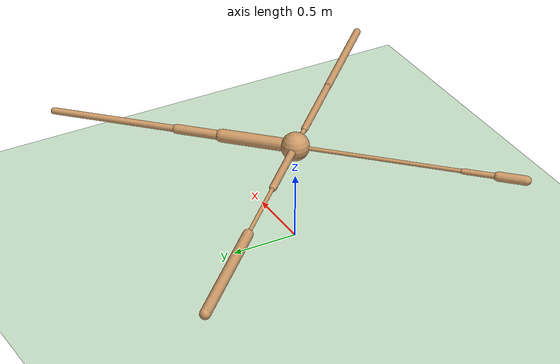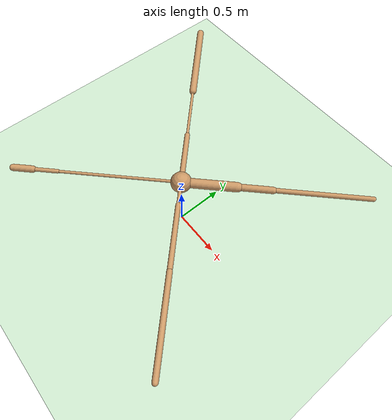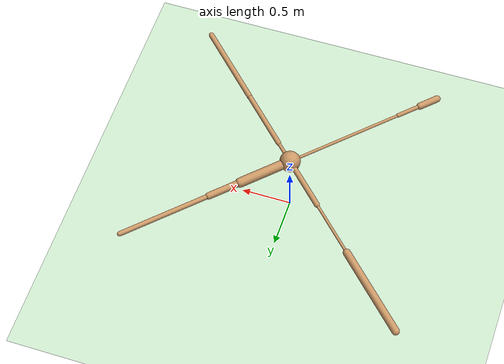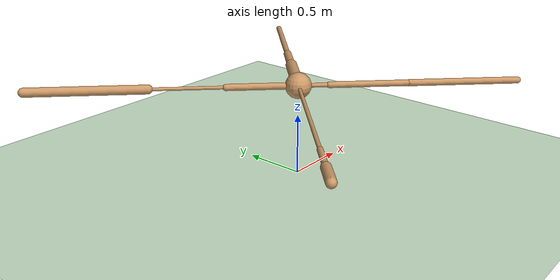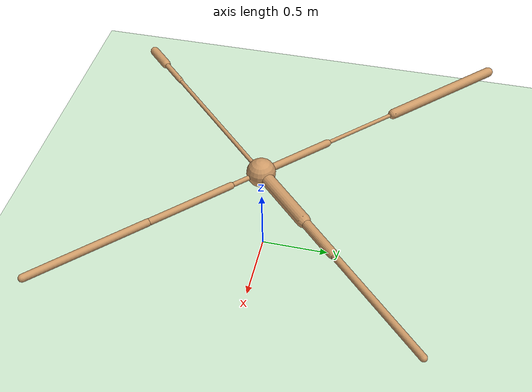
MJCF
<mujoco model="ant">
  <compiler angle="degree" coordinate="local" inertiafromgeom="true" />
  <option integrator="RK4" timestep="0.01" />
  <custom>
    <numeric data="0.0 0.0 0.55 1.0 0.0 0.0 0.0 0.0 1.0 0.0 -1.0 0.0 -1.0 0.0 1.0" name="init_qpos" />
  </custom>
  <default>
    <joint armature="1" damping="1" limited="true" />
    <geom conaffinity="0" condim="3" density="5.0" friction="1 0.5 0.5" margin="0.01" rgba="0.8 0.6 0.4 1" />
  </default>
  <asset>
    <texture builtin="gradient" height="100" rgb1="1 1 1" rgb2="0 0 0" type="skybox" width="100" />
    <texture builtin="flat" height="1278" mark="cross" markrgb="1 1 1" name="texgeom" random="0.01" rgb1="0.8 0.6 0.4" rgb2="0.8 0.6 0.4" type="cube" width="127" />
    <texture builtin="checker" height="100" name="texplane" rgb1="0 0 0" rgb2="0.8 0.8 0.8" type="2d" width="100" />
    <material name="MatPlane" reflectance="0.5" shininess="1" specular="1" texrepeat="60 60" texture="texplane" />
    <material name="geom" texture="texgeom" texuniform="true" />
  </asset>
  <worldbody>
    <light cutoff="100" diffuse="1 1 1" dir="-0 0 -1.3" directional="true" exponent="1" pos="0 0 1.3" specular=".1 .1 .1" />
    <geom conaffinity="1" condim="3" material="MatPlane" name="floor" pos="0 0 0" rgba="0.8 0.9 0.8 1" size="40 40 40" type="plane" />
    <body name="torso" pos="0 0 0.75">
      <camera name="track" mode="trackcom" pos="0 -11 5" xyaxes="1 0 0 0 0.5 1" />
      <geom name="torso_geom" pos="0 0 0" size="0.10446694493293762" type="sphere" />
      <joint armature="0" damping="0" limited="false" margin="0.01" name="root" pos="0 0 0" type="free" />
      <body name="front_left_leg" pos="0 0 0">
        <geom fromto="0 0 0 0.3840397596359253 0.3840397596359253 0" name="aux_1_geom" size="0.04872393608093262" type="capsule" />
        <body name="aux_1" pos="0.3840397596359253 0.3840397596359253 0">
          <joint axis="0 0 1" name="hip_1" pos="0.0 0.0 0.0" range="-30 30" type="hinge" />
          <geom fromto="0 0 0 0.23903217911720276 0.23903217911720276 0" name="left_leg_geom" size="0.03468230739235878" type="capsule" />
          <body name="left_leg_geom_aux" pos="0.23903217911720276 0.23903217911720276 0">
            <joint axis="-1 1 0" name="ankle_1" pos="0.0 0.0 0.0" range="30 70" type="hinge" />
            <geom fromto="0 0 0 0.6621845364570618 0.6621845364570618 0" name="left_ankle_geom" size="0.02462877333164215" type="capsule" />
          </body>
        </body>
      </body>
      <body name="front_right_leg" pos="0 0 0">
        <geom fromto="0 0 0 -0.3989933729171753 0.3989933729171753 0" name="aux_2_geom" size="0.027223888784646988" type="capsule" />
        <body name="aux_2" pos="-0.3989933729171753 0.3989933729171753 0">
          <joint axis="0 0 1" name="hip_2" pos="0.0 0.0 0.0" range="-30 30" type="hinge" />
          <geom fromto="0 0 0 -0.4250760078430176 0.4250760078430176 0" name="right_leg_geom" size="0.01397092267870903" type="capsule" />
          <body name="right_leg_geom_aux" pos="-0.4250760078430176 0.4250760078430176 0">
            <joint axis="1 1 0" name="ankle_2" pos="0.0 0.0 0.0" range="-70 -30" type="hinge" />
            <geom fromto="0 0 0 -0.6635921001434326 0.6635921001434326 0" name="right_ankle_geom" size="0.03766578063368797" type="capsule" />
          </body>
        </body>
      </body>
      <body name="back_leg" pos="0 0 0">
        <geom fromto="0 0 0 -0.8561438322067261 -0.8561438322067261 0" name="aux_3_geom" size="0.014665402472019196" type="capsule" />
        <body name="aux_3" pos="-0.8561438322067261 -0.8561438322067261 0">
          <joint axis="0 0 1" name="hip_3" pos="0.0 0.0 0.0" range="-30 30" type="hinge" />
          <geom fromto="0 0 0 -0.17603671550750732 -0.17603671550750732 0" name="back_leg_geom" size="0.02073105424642563" type="capsule" />
          <body name="back_leg_geom_aux" pos="-0.17603671550750732 -0.17603671550750732 0">
            <joint axis="-1 1 0" name="ankle_3" pos="0.0 0.0 0.0" range="-70 -30" type="hinge" />
            <geom fromto="0 0 0 -0.13931149244308472 -0.13931149244308472 0" name="third_ankle_geom" size="0.034735307097435" type="capsule" />
          </body>
        </body>
      </body>
      <body name="right_back_leg" pos="0 0 0">
        <geom fromto="0 0 0 0.17384284734725952 -0.17384284734725952 0" name="aux_4_geom" size="0.01763191819190979" type="capsule" />
        <body name="aux_4" pos="0.17384284734725952 -0.17384284734725952 0">
          <joint axis="0 0 1" name="hip_4" pos="0.0 0.0 0.0" range="-30 30" type="hinge" />
          <geom fromto="0 0 0 0.45225948095321655 -0.45225948095321655 0" name="rightback_leg_geom" size="0.02542060613632202" type="capsule" />
          <body name="rightback_leg_geom_aux" pos="0.45225948095321655 -0.45225948095321655 0">
            <joint axis="1 1 0" name="ankle_4" pos="0.0 0.0 0.0" range="30 70" type="hinge" />
            <geom fromto="0 0 0 0.6208341121673584 -0.6208341121673584 0" name="fourth_ankle_geom" size="0.02737080305814743" type="capsule" />
          </body>
        </body>
      </body>
    </body>
  </worldbody>
  <actuator>
    <motor ctrllimited="true" ctrlrange="-1.0 1.0" joint="hip_4" gear="150" />
    <motor ctrllimited="true" ctrlrange="-1.0 1.0" joint="ankle_4" gear="150" />
    <motor ctrllimited="true" ctrlrange="-1.0 1.0" joint="hip_1" gear="150" />
    <motor ctrllimited="true" ctrlrange="-1.0 1.0" joint="ankle_1" gear="150" />
    <motor ctrllimited="true" ctrlrange="-1.0 1.0" joint="hip_2" gear="150" />
    <motor ctrllimited="true" ctrlrange="-1.0 1.0" joint="ankle_2" gear="150" />
    <motor ctrllimited="true" ctrlrange="-1.0 1.0" joint="hip_3" gear="150" />
    <motor ctrllimited="true" ctrlrange="-1.0 1.0" joint="ankle_3" gear="150" />
  </actuator>
</mujoco>
